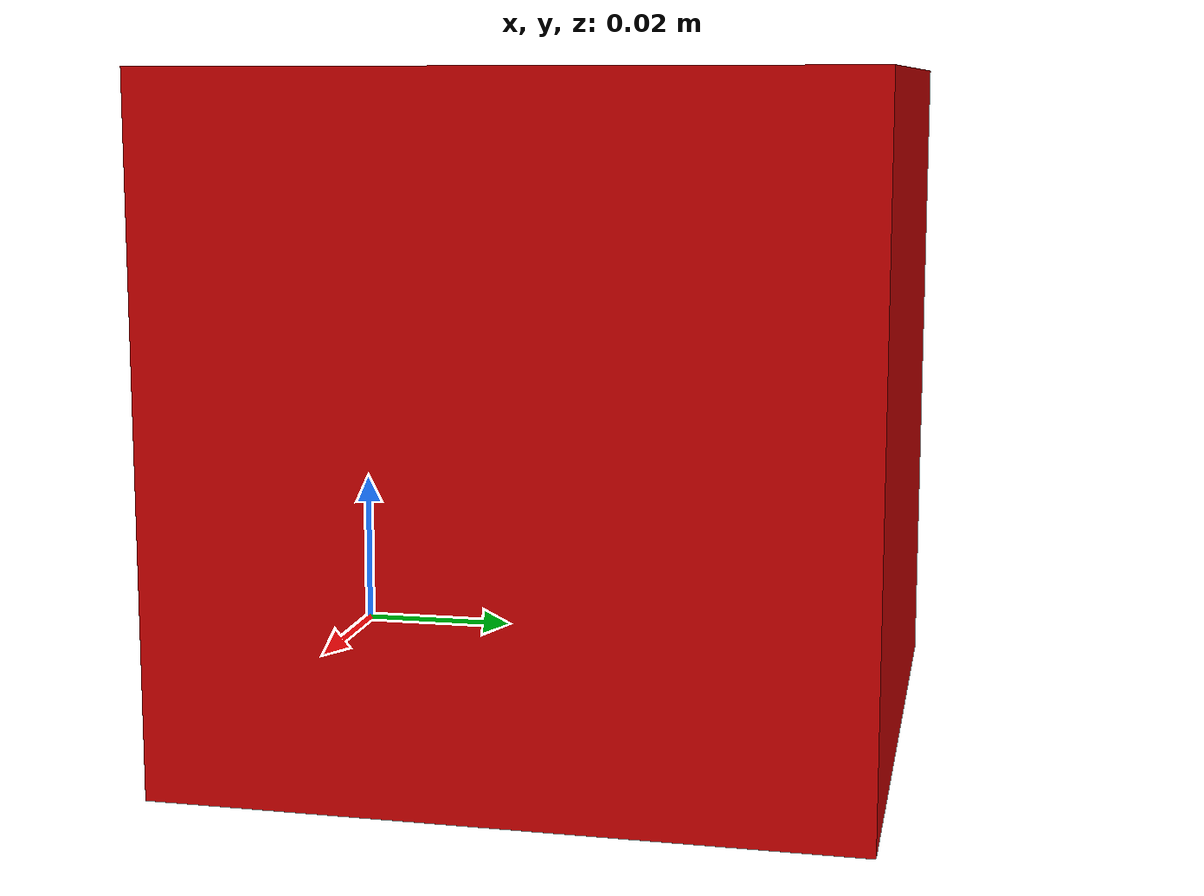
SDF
<?xml version="1.0" ?>
<sdf version="1.9">
  <model name="credit_cube">
    <static>false</static>
    <link name="link">
      <inertial>
        <mass>0.0625</mass>
        <pose>0.01905 0.01905 0.01905 0 0 0</pose>
        <inertia>
          <ixx>3.025e-05</ixx>
          <ixy>0</ixy>
          <ixz>0</ixz>
          <iyy>3.025e-05</iyy>
          <iyz>0</iyz>
          <izz>3.025e-05</izz>
        </inertia>
      </inertial>
      <collision name="collision">
        <pose>0 0 0.0 0 0 0</pose>
        <geometry>
          <mesh>
            <uri>meshes/CreditCube.stl</uri>
          </mesh>
        </geometry>
      </collision>
      <visual name="visual">
        <geometry>
          <mesh>
            <uri>meshes/CreditCube.stl</uri>
          </mesh>
        </geometry>
        <material>
          <ambient>0.5 0.0 0.0 1</ambient>
          <diffuse>0.8 0.0 0.0 1</diffuse>
          <specular>0.9 0.4 0.4 1</specular>
        </material>
      </visual>
      <sensor name="credit_cube_contact" type="contact">
        <contact>
          <collision>collision</collision>
        </contact>
        <always_on>true</always_on>
        <update_rate>30</update_rate>
      </sensor>
    </link>
    <plugin filename="ignition-gazebo-contact-system" name="gz::sim::systems::Contact"/>
  </model>
</sdf>
